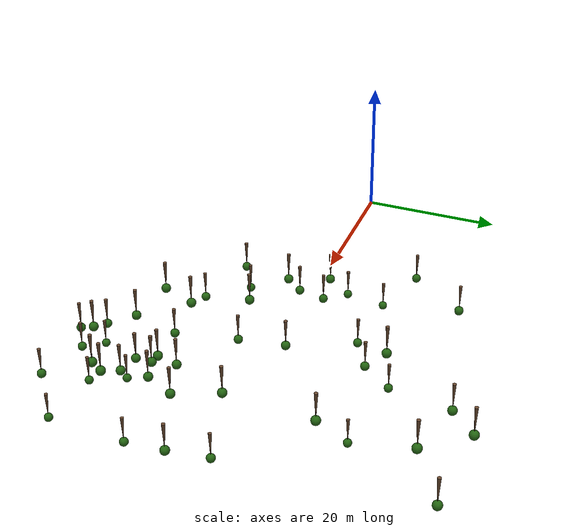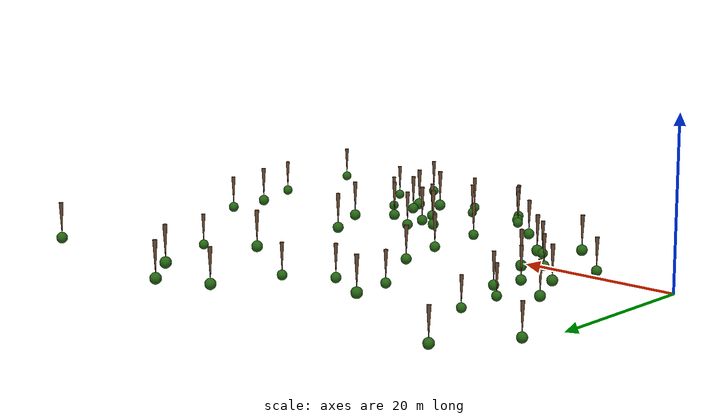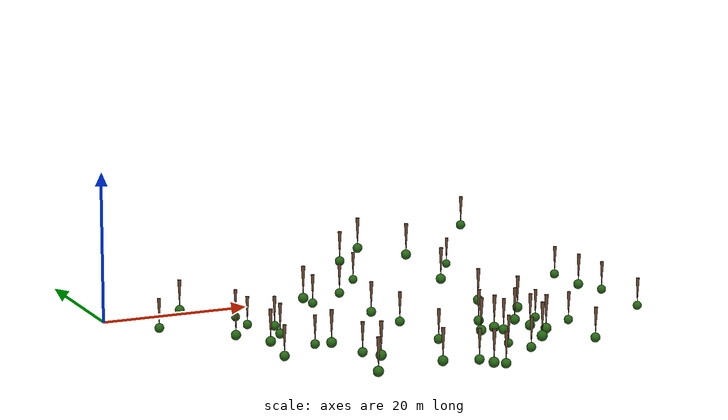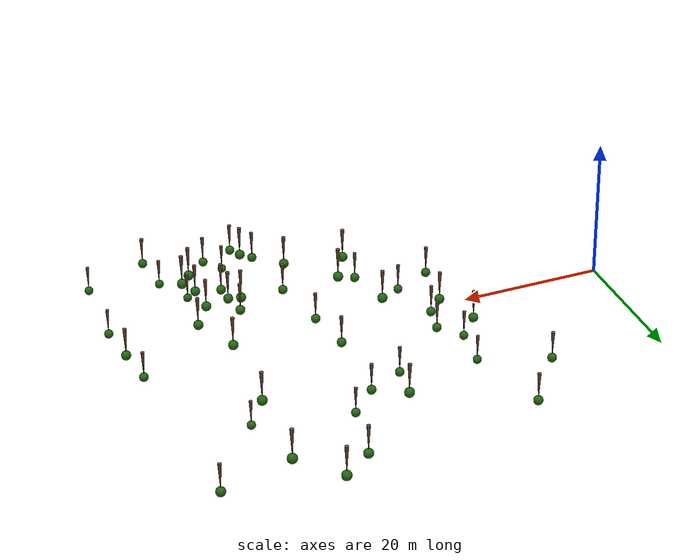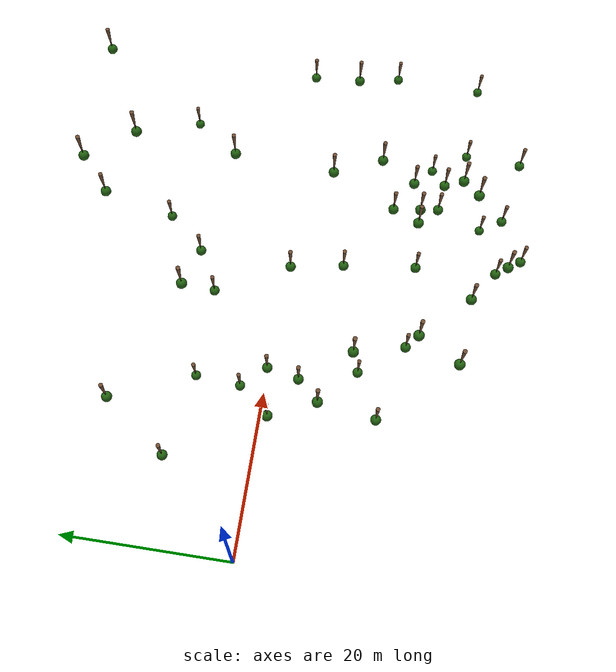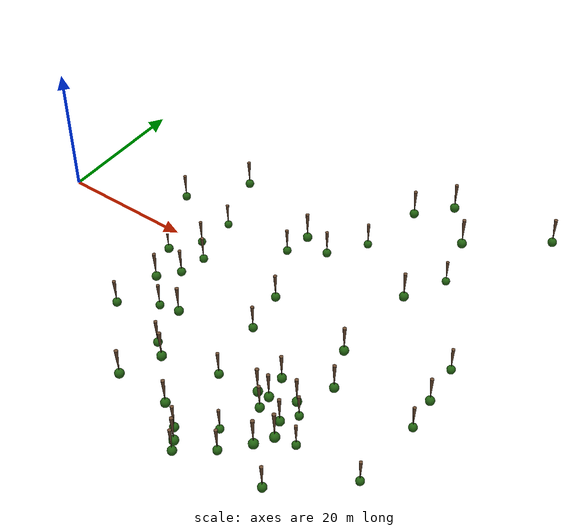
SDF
<sdf version="1.10">
 <model name="lehrforst_trees">
  <static>true</static>
  <link name="tree_0401">
   <visual name="tree_0401_trunk">
    <pose>55.01 23.818 1.102 3.14159 0 0</pose>
    <geometry><cone><radius>0.288</radius><length>4.608</length></cone></geometry>
    <material>
     <ambient>0.42 0.29 0.19 1</ambient>
     <diffuse>0.42 0.29 0.19 1</diffuse>
     <specular>0.42 0.29 0.19 1</specular>
    </material>
   </visual>
   <visual name="tree_0401_leaves">
    <pose>55.01 23.818 -1.2019999999999997 3.14159 0 0</pose>
    <geometry><sphere><radius>0.720</radius></sphere></geometry>
    <material>
     <ambient>0.14 0.40 0.07 1</ambient>
     <diffuse>0.14 0.40 0.07 1</diffuse>
     <specular>0.14 0.40 0.07 1</specular>
    </material>
   </visual>
   <collision name="tree_0401_collision">
    <pose>55.01 23.818 1.102 3.14159 0 0</pose>
    <geometry><cone><radius>0.288</radius><length>4.608</length></cone></geometry>
   </collision>
  </link>
  <link name="tree_0402">
   <visual name="tree_0402_trunk">
    <pose>31.808 -17.876 -1.258 3.14159 0 0</pose>
    <geometry><cone><radius>0.288</radius><length>4.608</length></cone></geometry>
    <material>
     <ambient>0.42 0.29 0.19 1</ambient>
     <diffuse>0.42 0.29 0.19 1</diffuse>
     <specular>0.42 0.29 0.19 1</specular>
    </material>
   </visual>
   <visual name="tree_0402_leaves">
    <pose>31.808 -17.876 -3.562 3.14159 0 0</pose>
    <geometry><sphere><radius>0.720</radius></sphere></geometry>
    <material>
     <ambient>0.14 0.40 0.07 1</ambient>
     <diffuse>0.14 0.40 0.07 1</diffuse>
     <specular>0.14 0.40 0.07 1</specular>
    </material>
   </visual>
   <collision name="tree_0402_collision">
    <pose>31.808 -17.876 -1.258 3.14159 0 0</pose>
    <geometry><cone><radius>0.288</radius><length>4.608</length></cone></geometry>
   </collision>
  </link>
  <link name="tree_0405">
   <visual name="tree_0405_trunk">
    <pose>28.887 -23.378 -1.755 3.14159 0 0</pose>
    <geometry><cone><radius>0.286</radius><length>4.576</length></cone></geometry>
    <material>
     <ambient>0.42 0.29 0.19 1</ambient>
     <diffuse>0.42 0.29 0.19 1</diffuse>
     <specular>0.42 0.29 0.19 1</specular>
    </material>
   </visual>
   <visual name="tree_0405_leaves">
    <pose>28.887 -23.378 -4.042999999999999 3.14159 0 0</pose>
    <geometry><sphere><radius>0.715</radius></sphere></geometry>
    <material>
     <ambient>0.14 0.40 0.07 1</ambient>
     <diffuse>0.14 0.40 0.07 1</diffuse>
     <specular>0.14 0.40 0.07 1</specular>
    </material>
   </visual>
   <collision name="tree_0405_collision">
    <pose>28.887 -23.378 -1.755 3.14159 0 0</pose>
    <geometry><cone><radius>0.286</radius><length>4.576</length></cone></geometry>
   </collision>
  </link>
  <link name="tree_0406">
   <visual name="tree_0406_trunk">
    <pose>54.115 -21.471 0.85 3.14159 0 0</pose>
    <geometry><cone><radius>0.286</radius><length>4.576</length></cone></geometry>
    <material>
     <ambient>0.42 0.29 0.19 1</ambient>
     <diffuse>0.42 0.29 0.19 1</diffuse>
     <specular>0.42 0.29 0.19 1</specular>
    </material>
   </visual>
   <visual name="tree_0406_leaves">
    <pose>54.115 -21.471 -1.4379999999999997 3.14159 0 0</pose>
    <geometry><sphere><radius>0.715</radius></sphere></geometry>
    <material>
     <ambient>0.14 0.40 0.07 1</ambient>
     <diffuse>0.14 0.40 0.07 1</diffuse>
     <specular>0.14 0.40 0.07 1</specular>
    </material>
   </visual>
   <collision name="tree_0406_collision">
    <pose>54.115 -21.471 0.85 3.14159 0 0</pose>
    <geometry><cone><radius>0.286</radius><length>4.576</length></cone></geometry>
   </collision>
  </link>
  <link name="tree_0408">
   <visual name="tree_0408_trunk">
    <pose>52.384 -23.703 0.543 3.14159 0 0</pose>
    <geometry><cone><radius>0.286</radius><length>4.576</length></cone></geometry>
    <material>
     <ambient>0.42 0.29 0.19 1</ambient>
     <diffuse>0.42 0.29 0.19 1</diffuse>
     <specular>0.42 0.29 0.19 1</specular>
    </material>
   </visual>
   <visual name="tree_0408_leaves">
    <pose>52.384 -23.703 -1.7449999999999997 3.14159 0 0</pose>
    <geometry><sphere><radius>0.715</radius></sphere></geometry>
    <material>
     <ambient>0.14 0.40 0.07 1</ambient>
     <diffuse>0.14 0.40 0.07 1</diffuse>
     <specular>0.14 0.40 0.07 1</specular>
    </material>
   </visual>
   <collision name="tree_0408_collision">
    <pose>52.384 -23.703 0.543 3.14159 0 0</pose>
    <geometry><cone><radius>0.286</radius><length>4.576</length></cone></geometry>
   </collision>
  </link>
  <link name="tree_0410">
   <visual name="tree_0410_trunk">
    <pose>34.213 13.357 -0.952 3.14159 0 0</pose>
    <geometry><cone><radius>0.286</radius><length>4.576</length></cone></geometry>
    <material>
     <ambient>0.42 0.29 0.19 1</ambient>
     <diffuse>0.42 0.29 0.19 1</diffuse>
     <specular>0.42 0.29 0.19 1</specular>
    </material>
   </visual>
   <visual name="tree_0410_leaves">
    <pose>34.213 13.357 -3.2399999999999998 3.14159 0 0</pose>
    <geometry><sphere><radius>0.715</radius></sphere></geometry>
    <material>
     <ambient>0.14 0.40 0.07 1</ambient>
     <diffuse>0.14 0.40 0.07 1</diffuse>
     <specular>0.14 0.40 0.07 1</specular>
    </material>
   </visual>
   <collision name="tree_0410_collision">
    <pose>34.213 13.357 -0.952 3.14159 0 0</pose>
    <geometry><cone><radius>0.286</radius><length>4.576</length></cone></geometry>
   </collision>
  </link>
  <link name="tree_0420">
   <visual name="tree_0420_trunk">
    <pose>28.259 -9.927 -1.147 3.14159 0 0</pose>
    <geometry><cone><radius>0.282</radius><length>4.512</length></cone></geometry>
    <material>
     <ambient>0.42 0.29 0.19 1</ambient>
     <diffuse>0.42 0.29 0.19 1</diffuse>
     <specular>0.42 0.29 0.19 1</specular>
    </material>
   </visual>
   <visual name="tree_0420_leaves">
    <pose>28.259 -9.927 -3.4029999999999996 3.14159 0 0</pose>
    <geometry><sphere><radius>0.705</radius></sphere></geometry>
    <material>
     <ambient>0.14 0.40 0.07 1</ambient>
     <diffuse>0.14 0.40 0.07 1</diffuse>
     <specular>0.14 0.40 0.07 1</specular>
    </material>
   </visual>
   <collision name="tree_0420_collision">
    <pose>28.259 -9.927 -1.147 3.14159 0 0</pose>
    <geometry><cone><radius>0.282</radius><length>4.512</length></cone></geometry>
   </collision>
  </link>
  <link name="tree_0421">
   <visual name="tree_0421_trunk">
    <pose>50.062 29.993 1.179 3.14159 0 0</pose>
    <geometry><cone><radius>0.282</radius><length>4.512</length></cone></geometry>
    <material>
     <ambient>0.42 0.29 0.19 1</ambient>
     <diffuse>0.42 0.29 0.19 1</diffuse>
     <specular>0.42 0.29 0.19 1</specular>
    </material>
   </visual>
   <visual name="tree_0421_leaves">
    <pose>50.062 29.993 -1.0769999999999997 3.14159 0 0</pose>
    <geometry><sphere><radius>0.705</radius></sphere></geometry>
    <material>
     <ambient>0.14 0.40 0.07 1</ambient>
     <diffuse>0.14 0.40 0.07 1</diffuse>
     <specular>0.14 0.40 0.07 1</specular>
    </material>
   </visual>
   <collision name="tree_0421_collision">
    <pose>50.062 29.993 1.179 3.14159 0 0</pose>
    <geometry><cone><radius>0.282</radius><length>4.512</length></cone></geometry>
   </collision>
  </link>
  <link name="tree_0422">
   <visual name="tree_0422_trunk">
    <pose>53.797 9.711 0.663 3.14159 0 0</pose>
    <geometry><cone><radius>0.282</radius><length>4.512</length></cone></geometry>
    <material>
     <ambient>0.42 0.29 0.19 1</ambient>
     <diffuse>0.42 0.29 0.19 1</diffuse>
     <specular>0.42 0.29 0.19 1</specular>
    </material>
   </visual>
   <visual name="tree_0422_leaves">
    <pose>53.797 9.711 -1.5929999999999997 3.14159 0 0</pose>
    <geometry><sphere><radius>0.705</radius></sphere></geometry>
    <material>
     <ambient>0.14 0.40 0.07 1</ambient>
     <diffuse>0.14 0.40 0.07 1</diffuse>
     <specular>0.14 0.40 0.07 1</specular>
    </material>
   </visual>
   <collision name="tree_0422_collision">
    <pose>53.797 9.711 0.663 3.14159 0 0</pose>
    <geometry><cone><radius>0.282</radius><length>4.512</length></cone></geometry>
   </collision>
  </link>
  <link name="tree_0426">
   <visual name="tree_0426_trunk">
    <pose>42.952 -28.404 -0.898 3.14159 0 0</pose>
    <geometry><cone><radius>0.280</radius><length>4.480</length></cone></geometry>
    <material>
     <ambient>0.42 0.29 0.19 1</ambient>
     <diffuse>0.42 0.29 0.19 1</diffuse>
     <specular>0.42 0.29 0.19 1</specular>
    </material>
   </visual>
   <visual name="tree_0426_leaves">
    <pose>42.952 -28.404 -3.1380000000000003 3.14159 0 0</pose>
    <geometry><sphere><radius>0.700</radius></sphere></geometry>
    <material>
     <ambient>0.14 0.40 0.07 1</ambient>
     <diffuse>0.14 0.40 0.07 1</diffuse>
     <specular>0.14 0.40 0.07 1</specular>
    </material>
   </visual>
   <collision name="tree_0426_collision">
    <pose>42.952 -28.404 -0.898 3.14159 0 0</pose>
    <geometry><cone><radius>0.280</radius><length>4.480</length></cone></geometry>
   </collision>
  </link>
  <link name="tree_0428">
   <visual name="tree_0428_trunk">
    <pose>47.256 -16.093 -0.0350000000000001 3.14159 0 0</pose>
    <geometry><cone><radius>0.278</radius><length>4.448</length></cone></geometry>
    <material>
     <ambient>0.42 0.29 0.19 1</ambient>
     <diffuse>0.42 0.29 0.19 1</diffuse>
     <specular>0.42 0.29 0.19 1</specular>
    </material>
   </visual>
   <visual name="tree_0428_leaves">
    <pose>47.256 -16.093 -2.2590000000000003 3.14159 0 0</pose>
    <geometry><sphere><radius>0.695</radius></sphere></geometry>
    <material>
     <ambient>0.14 0.40 0.07 1</ambient>
     <diffuse>0.14 0.40 0.07 1</diffuse>
     <specular>0.14 0.40 0.07 1</specular>
    </material>
   </visual>
   <collision name="tree_0428_collision">
    <pose>47.256 -16.093 -0.0350000000000001 3.14159 0 0</pose>
    <geometry><cone><radius>0.278</radius><length>4.448</length></cone></geometry>
   </collision>
  </link>
  <link name="tree_0431">
   <visual name="tree_0431_trunk">
    <pose>37.771 -24.047 -1.22 3.14159 0 0</pose>
    <geometry><cone><radius>0.278</radius><length>4.448</length></cone></geometry>
    <material>
     <ambient>0.42 0.29 0.19 1</ambient>
     <diffuse>0.42 0.29 0.19 1</diffuse>
     <specular>0.42 0.29 0.19 1</specular>
    </material>
   </visual>
   <visual name="tree_0431_leaves">
    <pose>37.771 -24.047 -3.444 3.14159 0 0</pose>
    <geometry><sphere><radius>0.695</radius></sphere></geometry>
    <material>
     <ambient>0.14 0.40 0.07 1</ambient>
     <diffuse>0.14 0.40 0.07 1</diffuse>
     <specular>0.14 0.40 0.07 1</specular>
    </material>
   </visual>
   <collision name="tree_0431_collision">
    <pose>37.771 -24.047 -1.22 3.14159 0 0</pose>
    <geometry><cone><radius>0.278</radius><length>4.448</length></cone></geometry>
   </collision>
  </link>
  <link name="tree_0437">
   <visual name="tree_0437_trunk">
    <pose>52.835 -3.96 0.764 3.14159 0 0</pose>
    <geometry><cone><radius>0.276</radius><length>4.416</length></cone></geometry>
    <material>
     <ambient>0.42 0.29 0.19 1</ambient>
     <diffuse>0.42 0.29 0.19 1</diffuse>
     <specular>0.42 0.29 0.19 1</specular>
    </material>
   </visual>
   <visual name="tree_0437_leaves">
    <pose>52.835 -3.96 -1.4440000000000002 3.14159 0 0</pose>
    <geometry><sphere><radius>0.690</radius></sphere></geometry>
    <material>
     <ambient>0.14 0.40 0.07 1</ambient>
     <diffuse>0.14 0.40 0.07 1</diffuse>
     <specular>0.14 0.40 0.07 1</specular>
    </material>
   </visual>
   <collision name="tree_0437_collision">
    <pose>52.835 -3.96 0.764 3.14159 0 0</pose>
    <geometry><cone><radius>0.276</radius><length>4.416</length></cone></geometry>
   </collision>
  </link>
  <link name="tree_0439">
   <visual name="tree_0439_trunk">
    <pose>21.001 -6.414 -1.113 3.14159 0 0</pose>
    <geometry><cone><radius>0.276</radius><length>4.416</length></cone></geometry>
    <material>
     <ambient>0.42 0.29 0.19 1</ambient>
     <diffuse>0.42 0.29 0.19 1</diffuse>
     <specular>0.42 0.29 0.19 1</specular>
    </material>
   </visual>
   <visual name="tree_0439_leaves">
    <pose>21.001 -6.414 -3.321 3.14159 0 0</pose>
    <geometry><sphere><radius>0.690</radius></sphere></geometry>
    <material>
     <ambient>0.14 0.40 0.07 1</ambient>
     <diffuse>0.14 0.40 0.07 1</diffuse>
     <specular>0.14 0.40 0.07 1</specular>
    </material>
   </visual>
   <collision name="tree_0439_collision">
    <pose>21.001 -6.414 -1.113 3.14159 0 0</pose>
    <geometry><cone><radius>0.276</radius><length>4.416</length></cone></geometry>
   </collision>
  </link>
  <link name="tree_0445">
   <visual name="tree_0445_trunk">
    <pose>49.154 -16.143 0.177 3.14159 0 0</pose>
    <geometry><cone><radius>0.274</radius><length>4.384</length></cone></geometry>
    <material>
     <ambient>0.42 0.29 0.19 1</ambient>
     <diffuse>0.42 0.29 0.19 1</diffuse>
     <specular>0.42 0.29 0.19 1</specular>
    </material>
   </visual>
   <visual name="tree_0445_leaves">
    <pose>49.154 -16.143 -2.015 3.14159 0 0</pose>
    <geometry><sphere><radius>0.685</radius></sphere></geometry>
    <material>
     <ambient>0.14 0.40 0.07 1</ambient>
     <diffuse>0.14 0.40 0.07 1</diffuse>
     <specular>0.14 0.40 0.07 1</specular>
    </material>
   </visual>
   <collision name="tree_0445_collision">
    <pose>49.154 -16.143 0.177 3.14159 0 0</pose>
    <geometry><cone><radius>0.274</radius><length>4.384</length></cone></geometry>
   </collision>
  </link>
  <link name="tree_0446">
   <visual name="tree_0446_trunk">
    <pose>45.372 25.881 0.471 3.14159 0 0</pose>
    <geometry><cone><radius>0.274</radius><length>4.384</length></cone></geometry>
    <material>
     <ambient>0.42 0.29 0.19 1</ambient>
     <diffuse>0.42 0.29 0.19 1</diffuse>
     <specular>0.42 0.29 0.19 1</specular>
    </material>
   </visual>
   <visual name="tree_0446_leaves">
    <pose>45.372 25.881 -1.721 3.14159 0 0</pose>
    <geometry><sphere><radius>0.685</radius></sphere></geometry>
    <material>
     <ambient>0.14 0.40 0.07 1</ambient>
     <diffuse>0.14 0.40 0.07 1</diffuse>
     <specular>0.14 0.40 0.07 1</specular>
    </material>
   </visual>
   <collision name="tree_0446_collision">
    <pose>45.372 25.881 0.471 3.14159 0 0</pose>
    <geometry><cone><radius>0.274</radius><length>4.384</length></cone></geometry>
   </collision>
  </link>
  <link name="tree_0450">
   <visual name="tree_0450_trunk">
    <pose>52.846 -14.9 0.533 3.14159 0 0</pose>
    <geometry><cone><radius>0.272</radius><length>4.352</length></cone></geometry>
    <material>
     <ambient>0.42 0.29 0.19 1</ambient>
     <diffuse>0.42 0.29 0.19 1</diffuse>
     <specular>0.42 0.29 0.19 1</specular>
    </material>
   </visual>
   <visual name="tree_0450_leaves">
    <pose>52.846 -14.9 -1.6430000000000002 3.14159 0 0</pose>
    <geometry><sphere><radius>0.680</radius></sphere></geometry>
    <material>
     <ambient>0.14 0.40 0.07 1</ambient>
     <diffuse>0.14 0.40 0.07 1</diffuse>
     <specular>0.14 0.40 0.07 1</specular>
    </material>
   </visual>
   <collision name="tree_0450_collision">
    <pose>52.846 -14.9 0.533 3.14159 0 0</pose>
    <geometry><cone><radius>0.272</radius><length>4.352</length></cone></geometry>
   </collision>
  </link>
  <link name="tree_0452">
   <visual name="tree_0452_trunk">
    <pose>55.614 -10.321 0.877 3.14159 0 0</pose>
    <geometry><cone><radius>0.272</radius><length>4.352</length></cone></geometry>
    <material>
     <ambient>0.42 0.29 0.19 1</ambient>
     <diffuse>0.42 0.29 0.19 1</diffuse>
     <specular>0.42 0.29 0.19 1</specular>
    </material>
   </visual>
   <visual name="tree_0452_leaves">
    <pose>55.614 -10.321 -1.2990000000000002 3.14159 0 0</pose>
    <geometry><sphere><radius>0.680</radius></sphere></geometry>
    <material>
     <ambient>0.14 0.40 0.07 1</ambient>
     <diffuse>0.14 0.40 0.07 1</diffuse>
     <specular>0.14 0.40 0.07 1</specular>
    </material>
   </visual>
   <collision name="tree_0452_collision">
    <pose>55.614 -10.321 0.877 3.14159 0 0</pose>
    <geometry><cone><radius>0.272</radius><length>4.352</length></cone></geometry>
   </collision>
  </link>
  <link name="tree_0454">
   <visual name="tree_0454_trunk">
    <pose>18.416 -0.568 -1.404 3.14159 0 0</pose>
    <geometry><cone><radius>0.272</radius><length>4.352</length></cone></geometry>
    <material>
     <ambient>0.42 0.29 0.19 1</ambient>
     <diffuse>0.42 0.29 0.19 1</diffuse>
     <specular>0.42 0.29 0.19 1</specular>
    </material>
   </visual>
   <visual name="tree_0454_leaves">
    <pose>18.416 -0.568 -3.58 3.14159 0 0</pose>
    <geometry><sphere><radius>0.680</radius></sphere></geometry>
    <material>
     <ambient>0.14 0.40 0.07 1</ambient>
     <diffuse>0.14 0.40 0.07 1</diffuse>
     <specular>0.14 0.40 0.07 1</specular>
    </material>
   </visual>
   <collision name="tree_0454_collision">
    <pose>18.416 -0.568 -1.404 3.14159 0 0</pose>
    <geometry><cone><radius>0.272</radius><length>4.352</length></cone></geometry>
   </collision>
  </link>
  <link name="tree_0459">
   <visual name="tree_0459_trunk">
    <pose>18.152 19.706 -2.611 3.14159 0 0</pose>
    <geometry><cone><radius>0.270</radius><length>4.320</length></cone></geometry>
    <material>
     <ambient>0.42 0.29 0.19 1</ambient>
     <diffuse>0.42 0.29 0.19 1</diffuse>
     <specular>0.42 0.29 0.19 1</specular>
    </material>
   </visual>
   <visual name="tree_0459_leaves">
    <pose>18.152 19.706 -4.771000000000001 3.14159 0 0</pose>
    <geometry><sphere><radius>0.675</radius></sphere></geometry>
    <material>
     <ambient>0.14 0.40 0.07 1</ambient>
     <diffuse>0.14 0.40 0.07 1</diffuse>
     <specular>0.14 0.40 0.07 1</specular>
    </material>
   </visual>
   <collision name="tree_0459_collision">
    <pose>18.152 19.706 -2.611 3.14159 0 0</pose>
    <geometry><cone><radius>0.270</radius><length>4.320</length></cone></geometry>
   </collision>
  </link>
  <link name="tree_0460">
   <visual name="tree_0460_trunk">
    <pose>48.636 -12.577 0.234 3.14159 0 0</pose>
    <geometry><cone><radius>0.268</radius><length>4.288</length></cone></geometry>
    <material>
     <ambient>0.42 0.29 0.19 1</ambient>
     <diffuse>0.42 0.29 0.19 1</diffuse>
     <specular>0.42 0.29 0.19 1</specular>
    </material>
   </visual>
   <visual name="tree_0460_leaves">
    <pose>48.636 -12.577 -1.9100000000000001 3.14159 0 0</pose>
    <geometry><sphere><radius>0.670</radius></sphere></geometry>
    <material>
     <ambient>0.14 0.40 0.07 1</ambient>
     <diffuse>0.14 0.40 0.07 1</diffuse>
     <specular>0.14 0.40 0.07 1</specular>
    </material>
   </visual>
   <collision name="tree_0460_collision">
    <pose>48.636 -12.577 0.234 3.14159 0 0</pose>
    <geometry><cone><radius>0.268</radius><length>4.288</length></cone></geometry>
   </collision>
  </link>
  <link name="tree_0464">
   <visual name="tree_0464_trunk">
    <pose>53.045 -18.956 0.649 3.14159 0 0</pose>
    <geometry><cone><radius>0.268</radius><length>4.288</length></cone></geometry>
    <material>
     <ambient>0.42 0.29 0.19 1</ambient>
     <diffuse>0.42 0.29 0.19 1</diffuse>
     <specular>0.42 0.29 0.19 1</specular>
    </material>
   </visual>
   <visual name="tree_0464_leaves">
    <pose>53.045 -18.956 -1.495 3.14159 0 0</pose>
    <geometry><sphere><radius>0.670</radius></sphere></geometry>
    <material>
     <ambient>0.14 0.40 0.07 1</ambient>
     <diffuse>0.14 0.40 0.07 1</diffuse>
     <specular>0.14 0.40 0.07 1</specular>
    </material>
   </visual>
   <collision name="tree_0464_collision">
    <pose>53.045 -18.956 0.649 3.14159 0 0</pose>
    <geometry><cone><radius>0.268</radius><length>4.288</length></cone></geometry>
   </collision>
  </link>
  <link name="tree_0466">
   <visual name="tree_0466_trunk">
    <pose>66.7 29.633 3.107 3.14159 0 0</pose>
    <geometry><cone><radius>0.268</radius><length>4.288</length></cone></geometry>
    <material>
     <ambient>0.42 0.29 0.19 1</ambient>
     <diffuse>0.42 0.29 0.19 1</diffuse>
     <specular>0.42 0.29 0.19 1</specular>
    </material>
   </visual>
   <visual name="tree_0466_leaves">
    <pose>66.7 29.633 0.9630000000000001 3.14159 0 0</pose>
    <geometry><sphere><radius>0.670</radius></sphere></geometry>
    <material>
     <ambient>0.14 0.40 0.07 1</ambient>
     <diffuse>0.14 0.40 0.07 1</diffuse>
     <specular>0.14 0.40 0.07 1</specular>
    </material>
   </visual>
   <collision name="tree_0466_collision">
    <pose>66.7 29.633 3.107 3.14159 0 0</pose>
    <geometry><cone><radius>0.268</radius><length>4.288</length></cone></geometry>
   </collision>
  </link>
  <link name="tree_0474">
   <visual name="tree_0474_trunk">
    <pose>67.517 -5.567 1.807 3.14159 0 0</pose>
    <geometry><cone><radius>0.266</radius><length>4.256</length></cone></geometry>
    <material>
     <ambient>0.42 0.29 0.19 1</ambient>
     <diffuse>0.42 0.29 0.19 1</diffuse>
     <specular>0.42 0.29 0.19 1</specular>
    </material>
   </visual>
   <visual name="tree_0474_leaves">
    <pose>67.517 -5.567 -0.3210000000000002 3.14159 0 0</pose>
    <geometry><sphere><radius>0.665</radius></sphere></geometry>
    <material>
     <ambient>0.14 0.40 0.07 1</ambient>
     <diffuse>0.14 0.40 0.07 1</diffuse>
     <specular>0.14 0.40 0.07 1</specular>
    </material>
   </visual>
   <collision name="tree_0474_collision">
    <pose>67.517 -5.567 1.807 3.14159 0 0</pose>
    <geometry><cone><radius>0.266</radius><length>4.256</length></cone></geometry>
   </collision>
  </link>
  <link name="tree_0475">
   <visual name="tree_0475_trunk">
    <pose>38.407 -0.325 -0.377 3.14159 0 0</pose>
    <geometry><cone><radius>0.264</radius><length>4.224</length></cone></geometry>
    <material>
     <ambient>0.42 0.29 0.19 1</ambient>
     <diffuse>0.42 0.29 0.19 1</diffuse>
     <specular>0.42 0.29 0.19 1</specular>
    </material>
   </visual>
   <visual name="tree_0475_leaves">
    <pose>38.407 -0.325 -2.489 3.14159 0 0</pose>
    <geometry><sphere><radius>0.660</radius></sphere></geometry>
    <material>
     <ambient>0.14 0.40 0.07 1</ambient>
     <diffuse>0.14 0.40 0.07 1</diffuse>
     <specular>0.14 0.40 0.07 1</specular>
    </material>
   </visual>
   <collision name="tree_0475_collision">
    <pose>38.407 -0.325 -0.377 3.14159 0 0</pose>
    <geometry><cone><radius>0.264</radius><length>4.224</length></cone></geometry>
   </collision>
  </link>
  <link name="tree_0478">
   <visual name="tree_0478_trunk">
    <pose>49.375 -18.44 0.297 3.14159 0 0</pose>
    <geometry><cone><radius>0.264</radius><length>4.224</length></cone></geometry>
    <material>
     <ambient>0.42 0.29 0.19 1</ambient>
     <diffuse>0.42 0.29 0.19 1</diffuse>
     <specular>0.42 0.29 0.19 1</specular>
    </material>
   </visual>
   <visual name="tree_0478_leaves">
    <pose>49.375 -18.44 -1.8150000000000002 3.14159 0 0</pose>
    <geometry><sphere><radius>0.660</radius></sphere></geometry>
    <material>
     <ambient>0.14 0.40 0.07 1</ambient>
     <diffuse>0.14 0.40 0.07 1</diffuse>
     <specular>0.14 0.40 0.07 1</specular>
    </material>
   </visual>
   <collision name="tree_0478_collision">
    <pose>49.375 -18.44 0.297 3.14159 0 0</pose>
    <geometry><cone><radius>0.264</radius><length>4.224</length></cone></geometry>
   </collision>
  </link>
  <link name="tree_0482">
   <visual name="tree_0482_trunk">
    <pose>23.525 -3.666 -1.079 3.14159 0 0</pose>
    <geometry><cone><radius>0.262</radius><length>4.192</length></cone></geometry>
    <material>
     <ambient>0.42 0.29 0.19 1</ambient>
     <diffuse>0.42 0.29 0.19 1</diffuse>
     <specular>0.42 0.29 0.19 1</specular>
    </material>
   </visual>
   <visual name="tree_0482_leaves">
    <pose>23.525 -3.666 -3.175 3.14159 0 0</pose>
    <geometry><sphere><radius>0.655</radius></sphere></geometry>
    <material>
     <ambient>0.14 0.40 0.07 1</ambient>
     <diffuse>0.14 0.40 0.07 1</diffuse>
     <specular>0.14 0.40 0.07 1</specular>
    </material>
   </visual>
   <collision name="tree_0482_collision">
    <pose>23.525 -3.666 -1.079 3.14159 0 0</pose>
    <geometry><cone><radius>0.262</radius><length>4.192</length></cone></geometry>
   </collision>
  </link>
  <link name="tree_0483">
   <visual name="tree_0483_trunk">
    <pose>19.87 -13.776 -1.284 3.14159 0 0</pose>
    <geometry><cone><radius>0.262</radius><length>4.192</length></cone></geometry>
    <material>
     <ambient>0.42 0.29 0.19 1</ambient>
     <diffuse>0.42 0.29 0.19 1</diffuse>
     <specular>0.42 0.29 0.19 1</specular>
    </material>
   </visual>
   <visual name="tree_0483_leaves">
    <pose>19.87 -13.776 -3.38 3.14159 0 0</pose>
    <geometry><sphere><radius>0.655</radius></sphere></geometry>
    <material>
     <ambient>0.14 0.40 0.07 1</ambient>
     <diffuse>0.14 0.40 0.07 1</diffuse>
     <specular>0.14 0.40 0.07 1</specular>
    </material>
   </visual>
   <collision name="tree_0483_collision">
    <pose>19.87 -13.776 -1.284 3.14159 0 0</pose>
    <geometry><cone><radius>0.262</radius><length>4.192</length></cone></geometry>
   </collision>
  </link>
  <link name="tree_0487">
   <visual name="tree_0487_trunk">
    <pose>43.932 -29.91 -0.906 3.14159 0 0</pose>
    <geometry><cone><radius>0.262</radius><length>4.192</length></cone></geometry>
    <material>
     <ambient>0.42 0.29 0.19 1</ambient>
     <diffuse>0.42 0.29 0.19 1</diffuse>
     <specular>0.42 0.29 0.19 1</specular>
    </material>
   </visual>
   <visual name="tree_0487_leaves">
    <pose>43.932 -29.91 -3.0020000000000002 3.14159 0 0</pose>
    <geometry><sphere><radius>0.655</radius></sphere></geometry>
    <material>
     <ambient>0.14 0.40 0.07 1</ambient>
     <diffuse>0.14 0.40 0.07 1</diffuse>
     <specular>0.14 0.40 0.07 1</specular>
    </material>
   </visual>
   <collision name="tree_0487_collision">
    <pose>43.932 -29.91 -0.906 3.14159 0 0</pose>
    <geometry><cone><radius>0.262</radius><length>4.192</length></cone></geometry>
   </collision>
  </link>
  <link name="tree_0488">
   <visual name="tree_0488_trunk">
    <pose>11.943 11.284 -2.636 3.14159 0 0</pose>
    <geometry><cone><radius>0.260</radius><length>4.160</length></cone></geometry>
    <material>
     <ambient>0.42 0.29 0.19 1</ambient>
     <diffuse>0.42 0.29 0.19 1</diffuse>
     <specular>0.42 0.29 0.19 1</specular>
    </material>
   </visual>
   <visual name="tree_0488_leaves">
    <pose>11.943 11.284 -4.716 3.14159 0 0</pose>
    <geometry><sphere><radius>0.650</radius></sphere></geometry>
    <material>
     <ambient>0.14 0.40 0.07 1</ambient>
     <diffuse>0.14 0.40 0.07 1</diffuse>
     <specular>0.14 0.40 0.07 1</specular>
    </material>
   </visual>
   <collision name="tree_0488_collision">
    <pose>11.943 11.284 -2.636 3.14159 0 0</pose>
    <geometry><cone><radius>0.260</radius><length>4.160</length></cone></geometry>
   </collision>
  </link>
  <link name="tree_0490">
   <visual name="tree_0490_trunk">
    <pose>41.663 -26.793 -0.946 3.14159 0 0</pose>
    <geometry><cone><radius>0.260</radius><length>4.160</length></cone></geometry>
    <material>
     <ambient>0.42 0.29 0.19 1</ambient>
     <diffuse>0.42 0.29 0.19 1</diffuse>
     <specular>0.42 0.29 0.19 1</specular>
    </material>
   </visual>
   <visual name="tree_0490_leaves">
    <pose>41.663 -26.793 -3.026 3.14159 0 0</pose>
    <geometry><sphere><radius>0.650</radius></sphere></geometry>
    <material>
     <ambient>0.14 0.40 0.07 1</ambient>
     <diffuse>0.14 0.40 0.07 1</diffuse>
     <specular>0.14 0.40 0.07 1</specular>
    </material>
   </visual>
   <collision name="tree_0490_collision">
    <pose>41.663 -26.793 -0.946 3.14159 0 0</pose>
    <geometry><cone><radius>0.260</radius><length>4.160</length></cone></geometry>
   </collision>
  </link>
  <link name="tree_0493">
   <visual name="tree_0493_trunk">
    <pose>39.534 -7.108 -0.313 3.14159 0 0</pose>
    <geometry><cone><radius>0.258</radius><length>4.128</length></cone></geometry>
    <material>
     <ambient>0.42 0.29 0.19 1</ambient>
     <diffuse>0.42 0.29 0.19 1</diffuse>
     <specular>0.42 0.29 0.19 1</specular>
    </material>
   </visual>
   <visual name="tree_0493_leaves">
    <pose>39.534 -7.108 -2.3770000000000002 3.14159 0 0</pose>
    <geometry><sphere><radius>0.645</radius></sphere></geometry>
    <material>
     <ambient>0.14 0.40 0.07 1</ambient>
     <diffuse>0.14 0.40 0.07 1</diffuse>
     <specular>0.14 0.40 0.07 1</specular>
    </material>
   </visual>
   <collision name="tree_0493_collision">
    <pose>39.534 -7.108 -0.313 3.14159 0 0</pose>
    <geometry><cone><radius>0.258</radius><length>4.128</length></cone></geometry>
   </collision>
  </link>
  <link name="tree_0494">
   <visual name="tree_0494_trunk">
    <pose>40.842 -16.412 -0.647 3.14159 0 0</pose>
    <geometry><cone><radius>0.258</radius><length>4.128</length></cone></geometry>
    <material>
     <ambient>0.42 0.29 0.19 1</ambient>
     <diffuse>0.42 0.29 0.19 1</diffuse>
     <specular>0.42 0.29 0.19 1</specular>
    </material>
   </visual>
   <visual name="tree_0494_leaves">
    <pose>40.842 -16.412 -2.7110000000000003 3.14159 0 0</pose>
    <geometry><sphere><radius>0.645</radius></sphere></geometry>
    <material>
     <ambient>0.14 0.40 0.07 1</ambient>
     <diffuse>0.14 0.40 0.07 1</diffuse>
     <specular>0.14 0.40 0.07 1</specular>
    </material>
   </visual>
   <collision name="tree_0494_collision">
    <pose>40.842 -16.412 -0.647 3.14159 0 0</pose>
    <geometry><cone><radius>0.258</radius><length>4.128</length></cone></geometry>
   </collision>
  </link>
  <link name="tree_0497">
   <visual name="tree_0497_trunk">
    <pose>29.845 -16.349 -1.259 3.14159 0 0</pose>
    <geometry><cone><radius>0.258</radius><length>4.128</length></cone></geometry>
    <material>
     <ambient>0.42 0.29 0.19 1</ambient>
     <diffuse>0.42 0.29 0.19 1</diffuse>
     <specular>0.42 0.29 0.19 1</specular>
    </material>
   </visual>
   <visual name="tree_0497_leaves">
    <pose>29.845 -16.349 -3.323 3.14159 0 0</pose>
    <geometry><sphere><radius>0.645</radius></sphere></geometry>
    <material>
     <ambient>0.14 0.40 0.07 1</ambient>
     <diffuse>0.14 0.40 0.07 1</diffuse>
     <specular>0.14 0.40 0.07 1</specular>
    </material>
   </visual>
   <collision name="tree_0497_collision">
    <pose>29.845 -16.349 -1.259 3.14159 0 0</pose>
    <geometry><cone><radius>0.258</radius><length>4.128</length></cone></geometry>
   </collision>
  </link>
  <link name="tree_0498">
   <visual name="tree_0498_trunk">
    <pose>38.997 11.656 -0.545 3.14159 0 0</pose>
    <geometry><cone><radius>0.258</radius><length>4.128</length></cone></geometry>
    <material>
     <ambient>0.42 0.29 0.19 1</ambient>
     <diffuse>0.42 0.29 0.19 1</diffuse>
     <specular>0.42 0.29 0.19 1</specular>
    </material>
   </visual>
   <visual name="tree_0498_leaves">
    <pose>38.997 11.656 -2.609 3.14159 0 0</pose>
    <geometry><sphere><radius>0.645</radius></sphere></geometry>
    <material>
     <ambient>0.14 0.40 0.07 1</ambient>
     <diffuse>0.14 0.40 0.07 1</diffuse>
     <specular>0.14 0.40 0.07 1</specular>
    </material>
   </visual>
   <collision name="tree_0498_collision">
    <pose>38.997 11.656 -0.545 3.14159 0 0</pose>
    <geometry><cone><radius>0.258</radius><length>4.128</length></cone></geometry>
   </collision>
  </link>
  <link name="tree_0504">
   <visual name="tree_0504_trunk">
    <pose>57.59 -28.674 0.706 3.14159 0 0</pose>
    <geometry><cone><radius>0.256</radius><length>4.096</length></cone></geometry>
    <material>
     <ambient>0.42 0.29 0.19 1</ambient>
     <diffuse>0.42 0.29 0.19 1</diffuse>
     <specular>0.42 0.29 0.19 1</specular>
    </material>
   </visual>
   <visual name="tree_0504_leaves">
    <pose>57.59 -28.674 -1.342 3.14159 0 0</pose>
    <geometry><sphere><radius>0.640</radius></sphere></geometry>
    <material>
     <ambient>0.14 0.40 0.07 1</ambient>
     <diffuse>0.14 0.40 0.07 1</diffuse>
     <specular>0.14 0.40 0.07 1</specular>
    </material>
   </visual>
   <collision name="tree_0504_collision">
    <pose>57.59 -28.674 0.706 3.14159 0 0</pose>
    <geometry><cone><radius>0.256</radius><length>4.096</length></cone></geometry>
   </collision>
  </link>
  <link name="tree_0505">
   <visual name="tree_0505_trunk">
    <pose>24.427 0.398 -1.107 3.14159 0 0</pose>
    <geometry><cone><radius>0.256</radius><length>4.096</length></cone></geometry>
    <material>
     <ambient>0.42 0.29 0.19 1</ambient>
     <diffuse>0.42 0.29 0.19 1</diffuse>
     <specular>0.42 0.29 0.19 1</specular>
    </material>
   </visual>
   <visual name="tree_0505_leaves">
    <pose>24.427 0.398 -3.1550000000000002 3.14159 0 0</pose>
    <geometry><sphere><radius>0.640</radius></sphere></geometry>
    <material>
     <ambient>0.14 0.40 0.07 1</ambient>
     <diffuse>0.14 0.40 0.07 1</diffuse>
     <specular>0.14 0.40 0.07 1</specular>
    </material>
   </visual>
   <collision name="tree_0505_collision">
    <pose>24.427 0.398 -1.107 3.14159 0 0</pose>
    <geometry><cone><radius>0.256</radius><length>4.096</length></cone></geometry>
   </collision>
  </link>
  <link name="tree_0515">
   <visual name="tree_0515_trunk">
    <pose>49.077 -26.962 -0.117 3.14159 0 0</pose>
    <geometry><cone><radius>0.252</radius><length>4.032</length></cone></geometry>
    <material>
     <ambient>0.42 0.29 0.19 1</ambient>
     <diffuse>0.42 0.29 0.19 1</diffuse>
     <specular>0.42 0.29 0.19 1</specular>
    </material>
   </visual>
   <visual name="tree_0515_leaves">
    <pose>49.077 -26.962 -2.133 3.14159 0 0</pose>
    <geometry><sphere><radius>0.630</radius></sphere></geometry>
    <material>
     <ambient>0.14 0.40 0.07 1</ambient>
     <diffuse>0.14 0.40 0.07 1</diffuse>
     <specular>0.14 0.40 0.07 1</specular>
    </material>
   </visual>
   <collision name="tree_0515_collision">
    <pose>49.077 -26.962 -0.117 3.14159 0 0</pose>
    <geometry><cone><radius>0.252</radius><length>4.032</length></cone></geometry>
   </collision>
  </link>
  <link name="tree_0519">
   <visual name="tree_0519_trunk">
    <pose>33.703 8.857 -0.868 3.14159 0 0</pose>
    <geometry><cone><radius>0.252</radius><length>4.032</length></cone></geometry>
    <material>
     <ambient>0.42 0.29 0.19 1</ambient>
     <diffuse>0.42 0.29 0.19 1</diffuse>
     <specular>0.42 0.29 0.19 1</specular>
    </material>
   </visual>
   <visual name="tree_0519_leaves">
    <pose>33.703 8.857 -2.884 3.14159 0 0</pose>
    <geometry><sphere><radius>0.630</radius></sphere></geometry>
    <material>
     <ambient>0.14 0.40 0.07 1</ambient>
     <diffuse>0.14 0.40 0.07 1</diffuse>
     <specular>0.14 0.40 0.07 1</specular>
    </material>
   </visual>
   <collision name="tree_0519_collision">
    <pose>33.703 8.857 -0.868 3.14159 0 0</pose>
    <geometry><cone><radius>0.252</radius><length>4.032</length></cone></geometry>
   </collision>
  </link>
  <link name="tree_0529">
   <visual name="tree_0529_trunk">
    <pose>67.027 0.525 1.824 3.14159 0 0</pose>
    <geometry><cone><radius>0.248</radius><length>3.968</length></cone></geometry>
    <material>
     <ambient>0.42 0.29 0.19 1</ambient>
     <diffuse>0.42 0.29 0.19 1</diffuse>
     <specular>0.42 0.29 0.19 1</specular>
    </material>
   </visual>
   <visual name="tree_0529_leaves">
    <pose>67.027 0.525 -0.15999999999999992 3.14159 0 0</pose>
    <geometry><sphere><radius>0.620</radius></sphere></geometry>
    <material>
     <ambient>0.14 0.40 0.07 1</ambient>
     <diffuse>0.14 0.40 0.07 1</diffuse>
     <specular>0.14 0.40 0.07 1</specular>
    </material>
   </visual>
   <collision name="tree_0529_collision">
    <pose>67.027 0.525 1.824 3.14159 0 0</pose>
    <geometry><cone><radius>0.248</radius><length>3.968</length></cone></geometry>
   </collision>
  </link>
  <link name="tree_0530">
   <visual name="tree_0530_trunk">
    <pose>25.49 -10.808 -1.122 3.14159 0 0</pose>
    <geometry><cone><radius>0.248</radius><length>3.968</length></cone></geometry>
    <material>
     <ambient>0.42 0.29 0.19 1</ambient>
     <diffuse>0.42 0.29 0.19 1</diffuse>
     <specular>0.42 0.29 0.19 1</specular>
    </material>
   </visual>
   <visual name="tree_0530_leaves">
    <pose>25.49 -10.808 -3.106 3.14159 0 0</pose>
    <geometry><sphere><radius>0.620</radius></sphere></geometry>
    <material>
     <ambient>0.14 0.40 0.07 1</ambient>
     <diffuse>0.14 0.40 0.07 1</diffuse>
     <specular>0.14 0.40 0.07 1</specular>
    </material>
   </visual>
   <collision name="tree_0530_collision">
    <pose>25.49 -10.808 -1.122 3.14159 0 0</pose>
    <geometry><cone><radius>0.248</radius><length>3.968</length></cone></geometry>
   </collision>
  </link>
  <link name="tree_0531">
   <visual name="tree_0531_trunk">
    <pose>43.204 16.358 -0.153 3.14159 0 0</pose>
    <geometry><cone><radius>0.246</radius><length>3.936</length></cone></geometry>
    <material>
     <ambient>0.42 0.29 0.19 1</ambient>
     <diffuse>0.42 0.29 0.19 1</diffuse>
     <specular>0.42 0.29 0.19 1</specular>
    </material>
   </visual>
   <visual name="tree_0531_leaves">
    <pose>43.204 16.358 -2.121 3.14159 0 0</pose>
    <geometry><sphere><radius>0.615</radius></sphere></geometry>
    <material>
     <ambient>0.14 0.40 0.07 1</ambient>
     <diffuse>0.14 0.40 0.07 1</diffuse>
     <specular>0.14 0.40 0.07 1</specular>
    </material>
   </visual>
   <collision name="tree_0531_collision">
    <pose>43.204 16.358 -0.153 3.14159 0 0</pose>
    <geometry><cone><radius>0.246</radius><length>3.936</length></cone></geometry>
   </collision>
  </link>
  <link name="tree_0534">
   <visual name="tree_0534_trunk">
    <pose>21.675 3.348 -1.422 3.14159 0 0</pose>
    <geometry><cone><radius>0.246</radius><length>3.936</length></cone></geometry>
    <material>
     <ambient>0.42 0.29 0.19 1</ambient>
     <diffuse>0.42 0.29 0.19 1</diffuse>
     <specular>0.42 0.29 0.19 1</specular>
    </material>
   </visual>
   <visual name="tree_0534_leaves">
    <pose>21.675 3.348 -3.3899999999999997 3.14159 0 0</pose>
    <geometry><sphere><radius>0.615</radius></sphere></geometry>
    <material>
     <ambient>0.14 0.40 0.07 1</ambient>
     <diffuse>0.14 0.40 0.07 1</diffuse>
     <specular>0.14 0.40 0.07 1</specular>
    </material>
   </visual>
   <collision name="tree_0534_collision">
    <pose>21.675 3.348 -1.422 3.14159 0 0</pose>
    <geometry><cone><radius>0.246</radius><length>3.936</length></cone></geometry>
   </collision>
  </link>
  <link name="tree_0540">
   <visual name="tree_0540_trunk">
    <pose>68.226 -10.901 2.018 3.14159 0 0</pose>
    <geometry><cone><radius>0.242</radius><length>3.872</length></cone></geometry>
    <material>
     <ambient>0.42 0.29 0.19 1</ambient>
     <diffuse>0.42 0.29 0.19 1</diffuse>
     <specular>0.42 0.29 0.19 1</specular>
    </material>
   </visual>
   <visual name="tree_0540_leaves">
    <pose>68.226 -10.901 0.08199999999999985 3.14159 0 0</pose>
    <geometry><sphere><radius>0.605</radius></sphere></geometry>
    <material>
     <ambient>0.14 0.40 0.07 1</ambient>
     <diffuse>0.14 0.40 0.07 1</diffuse>
     <specular>0.14 0.40 0.07 1</specular>
    </material>
   </visual>
   <collision name="tree_0540_collision">
    <pose>68.226 -10.901 2.018 3.14159 0 0</pose>
    <geometry><cone><radius>0.242</radius><length>3.872</length></cone></geometry>
   </collision>
  </link>
  <link name="tree_0545">
   <visual name="tree_0545_trunk">
    <pose>22.259 9.05 -1.795 3.14159 0 0</pose>
    <geometry><cone><radius>0.240</radius><length>3.840</length></cone></geometry>
    <material>
     <ambient>0.42 0.29 0.19 1</ambient>
     <diffuse>0.42 0.29 0.19 1</diffuse>
     <specular>0.42 0.29 0.19 1</specular>
    </material>
   </visual>
   <visual name="tree_0545_leaves">
    <pose>22.259 9.05 -3.715 3.14159 0 0</pose>
    <geometry><sphere><radius>0.600</radius></sphere></geometry>
    <material>
     <ambient>0.14 0.40 0.07 1</ambient>
     <diffuse>0.14 0.40 0.07 1</diffuse>
     <specular>0.14 0.40 0.07 1</specular>
    </material>
   </visual>
   <collision name="tree_0545_collision">
    <pose>22.259 9.05 -1.795 3.14159 0 0</pose>
    <geometry><cone><radius>0.240</radius><length>3.840</length></cone></geometry>
   </collision>
  </link>
  <link name="tree_0547">
   <visual name="tree_0547_trunk">
    <pose>54.799 -17.084 0.873 3.14159 0 0</pose>
    <geometry><cone><radius>0.238</radius><length>3.808</length></cone></geometry>
    <material>
     <ambient>0.42 0.29 0.19 1</ambient>
     <diffuse>0.42 0.29 0.19 1</diffuse>
     <specular>0.42 0.29 0.19 1</specular>
    </material>
   </visual>
   <visual name="tree_0547_leaves">
    <pose>54.799 -17.084 -1.031 3.14159 0 0</pose>
    <geometry><sphere><radius>0.595</radius></sphere></geometry>
    <material>
     <ambient>0.14 0.40 0.07 1</ambient>
     <diffuse>0.14 0.40 0.07 1</diffuse>
     <specular>0.14 0.40 0.07 1</specular>
    </material>
   </visual>
   <collision name="tree_0547_collision">
    <pose>54.799 -17.084 0.873 3.14159 0 0</pose>
    <geometry><cone><radius>0.238</radius><length>3.808</length></cone></geometry>
   </collision>
  </link>
  <link name="tree_0551">
   <visual name="tree_0551_trunk">
    <pose>57.477 -21.405 1.279 3.14159 0 0</pose>
    <geometry><cone><radius>0.238</radius><length>3.808</length></cone></geometry>
    <material>
     <ambient>0.42 0.29 0.19 1</ambient>
     <diffuse>0.42 0.29 0.19 1</diffuse>
     <specular>0.42 0.29 0.19 1</specular>
    </material>
   </visual>
   <visual name="tree_0551_leaves">
    <pose>57.477 -21.405 -0.625 3.14159 0 0</pose>
    <geometry><sphere><radius>0.595</radius></sphere></geometry>
    <material>
     <ambient>0.14 0.40 0.07 1</ambient>
     <diffuse>0.14 0.40 0.07 1</diffuse>
     <specular>0.14 0.40 0.07 1</specular>
    </material>
   </visual>
   <collision name="tree_0551_collision">
    <pose>57.477 -21.405 1.279 3.14159 0 0</pose>
    <geometry><cone><radius>0.238</radius><length>3.808</length></cone></geometry>
   </collision>
  </link>
  <link name="tree_0554">
   <visual name="tree_0554_trunk">
    <pose>57.377 15.288 0.947 3.14159 0 0</pose>
    <geometry><cone><radius>0.236</radius><length>3.776</length></cone></geometry>
    <material>
     <ambient>0.42 0.29 0.19 1</ambient>
     <diffuse>0.42 0.29 0.19 1</diffuse>
     <specular>0.42 0.29 0.19 1</specular>
    </material>
   </visual>
   <visual name="tree_0554_leaves">
    <pose>57.377 15.288 -0.941 3.14159 0 0</pose>
    <geometry><sphere><radius>0.590</radius></sphere></geometry>
    <material>
     <ambient>0.14 0.40 0.07 1</ambient>
     <diffuse>0.14 0.40 0.07 1</diffuse>
     <specular>0.14 0.40 0.07 1</specular>
    </material>
   </visual>
   <collision name="tree_0554_collision">
    <pose>57.377 15.288 0.947 3.14159 0 0</pose>
    <geometry><cone><radius>0.236</radius><length>3.776</length></cone></geometry>
   </collision>
  </link>
  <link name="tree_0559">
   <visual name="tree_0559_trunk">
    <pose>67.56 -21.968 2.301 3.14159 0 0</pose>
    <geometry><cone><radius>0.236</radius><length>3.776</length></cone></geometry>
    <material>
     <ambient>0.42 0.29 0.19 1</ambient>
     <diffuse>0.42 0.29 0.19 1</diffuse>
     <specular>0.42 0.29 0.19 1</specular>
    </material>
   </visual>
   <visual name="tree_0559_leaves">
    <pose>67.56 -21.968 0.41300000000000026 3.14159 0 0</pose>
    <geometry><sphere><radius>0.590</radius></sphere></geometry>
    <material>
     <ambient>0.14 0.40 0.07 1</ambient>
     <diffuse>0.14 0.40 0.07 1</diffuse>
     <specular>0.14 0.40 0.07 1</specular>
    </material>
   </visual>
   <collision name="tree_0559_collision">
    <pose>67.56 -21.968 2.301 3.14159 0 0</pose>
    <geometry><cone><radius>0.236</radius><length>3.776</length></cone></geometry>
   </collision>
  </link>
  <link name="tree_0562">
   <visual name="tree_0562_trunk">
    <pose>47.218 -24.131 -0.189 3.14159 0 0</pose>
    <geometry><cone><radius>0.234</radius><length>3.744</length></cone></geometry>
    <material>
     <ambient>0.42 0.29 0.19 1</ambient>
     <diffuse>0.42 0.29 0.19 1</diffuse>
     <specular>0.42 0.29 0.19 1</specular>
    </material>
   </visual>
   <visual name="tree_0562_leaves">
    <pose>47.218 -24.131 -2.061 3.14159 0 0</pose>
    <geometry><sphere><radius>0.585</radius></sphere></geometry>
    <material>
     <ambient>0.14 0.40 0.07 1</ambient>
     <diffuse>0.14 0.40 0.07 1</diffuse>
     <specular>0.14 0.40 0.07 1</specular>
    </material>
   </visual>
   <collision name="tree_0562_collision">
    <pose>47.218 -24.131 -0.189 3.14159 0 0</pose>
    <geometry><cone><radius>0.234</radius><length>3.744</length></cone></geometry>
   </collision>
  </link>
 </model>
</sdf>
